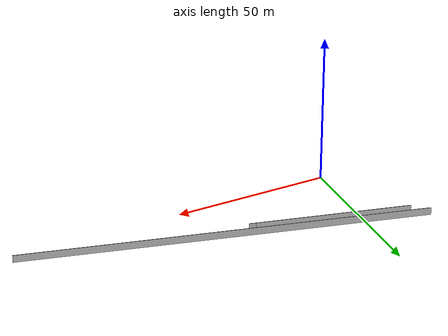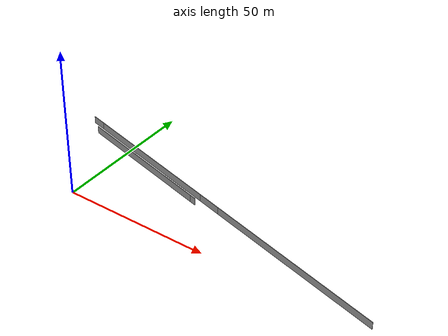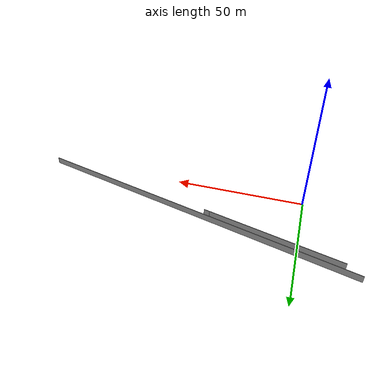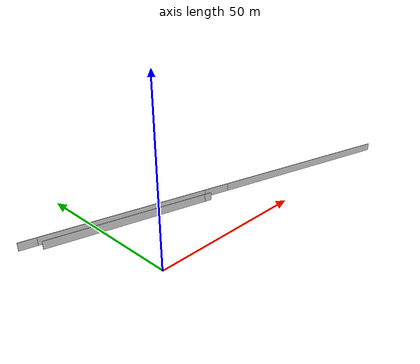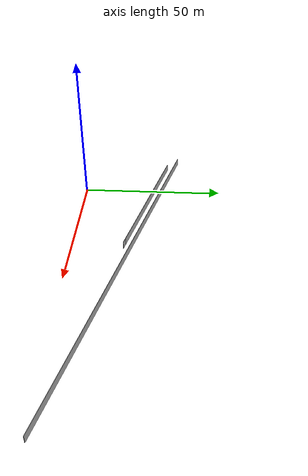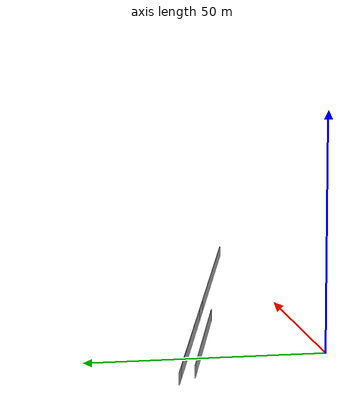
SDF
<?xml version="1.0" ?>
<sdf version="1.6">
  <model name="sps_0507">
    <pose frame="">0 0 0 0 -0 0</pose>
    <static>1</static>
    <self_collide>0</self_collide>
    <allow_auto_disable>0</allow_auto_disable>
    <link name="Wall2">
      <kinematic>0</kinematic>
      <gravity>1</gravity>
      <self_collide>0</self_collide>
      <collision name="collision">
        <geometry>
          <box>
            <size>51.584 0.15 2.5</size>
          </box>
        </geometry>
        <pose frame="">0 0 0 0 -0 0</pose>
      </collision>
      <visual name="visual">
        <geometry>
          <box>
            <size>51.584 0.15 2.5</size>
          </box>
        </geometry>
        <pose frame="">0 0 0 0 -0 0</pose>
        <cast_shadows>1</cast_shadows>
        <transparency>0.0</transparency>
      </visual>
      <pose frame="">9.46944 26.3284 1.25 0 0 -0.248456</pose>
    </link>
    <link name="Wall3">
      <kinematic>0</kinematic>
      <gravity>1</gravity>
      <self_collide>0</self_collide>
      <collision name="collision">
        <geometry>
          <box>
            <size>8.51095 0.15 2.5</size>
          </box>
        </geometry>
        <pose frame="">0 0 0 0 -0 0</pose>
      </collision>
      <visual name="visual">
        <geometry>
          <box>
            <size>8.51095 0.15 2.5</size>
          </box>
        </geometry>
        <pose frame="">0 0 0 0 -0 0</pose>
        <cast_shadows>1</cast_shadows>
        <transparency>0.0</transparency>
      </visual>
      <pose frame="">38.5942 18.9395 1.25 0 0 -0.248456</pose>
    </link>
    <link name="Wall408">
      <kinematic>0</kinematic>
      <gravity>1</gravity>
      <self_collide>0</self_collide>
      <collision name="collision">
        <geometry>
          <box>
            <size>2.20824 0.15 2.5</size>
          </box>
        </geometry>
        <pose frame="">0 0 0 0 -0 0</pose>
      </collision>
      <visual name="visual">
        <geometry>
          <box>
            <size>2.20824 0.15 2.5</size>
          </box>
        </geometry>
        <pose frame="">0 0 0 0 -0 0</pose>
        <cast_shadows>1</cast_shadows>
        <transparency>0.0</transparency>
      </visual>
      <pose frame="">33.3988 17.6234 1.25 0 -0 2.89487</pose>
    </link>
    <link name="Wall409">
      <kinematic>0</kinematic>
      <gravity>1</gravity>
      <self_collide>0</self_collide>
      <collision name="collision">
        <geometry>
          <box>
            <size>49.3531 0.15 2.5</size>
          </box>
        </geometry>
        <pose frame="">0 0 0 0 -0 0</pose>
      </collision>
      <visual name="visual">
        <geometry>
          <box>
            <size>49.3531 0.15 2.5</size>
          </box>
        </geometry>
        <pose frame="">0 0 0 0 -0 0</pose>
        <cast_shadows>1</cast_shadows>
        <transparency>0.0</transparency>
      </visual>
      <pose frame="">8.39876 23.9198 1.25 0 -0 2.89487</pose>
    </link>
    <link name="Wall1896">
      <kinematic>0</kinematic>
      <gravity>1</gravity>
      <self_collide>0</self_collide>
      <collision name="collision">
        <geometry>
          <box>
            <size>130.401 0.15 2.5</size>
          </box>
        </geometry>
        <pose frame="">0 0 0 0 -0 0</pose>
      </collision>
      <visual name="visual">
        <geometry>
          <box>
            <size>130.401 0.15 2.5</size>
          </box>
        </geometry>
        <pose frame="">0 0 0 0 -0 0</pose>
        <cast_shadows>1</cast_shadows>
        <transparency>0.0</transparency>
      </visual>
      <pose frame="">42.7602 17.8829 1.25 0 0 -0.248455</pose>
    </link>
  </model>
</sdf>
